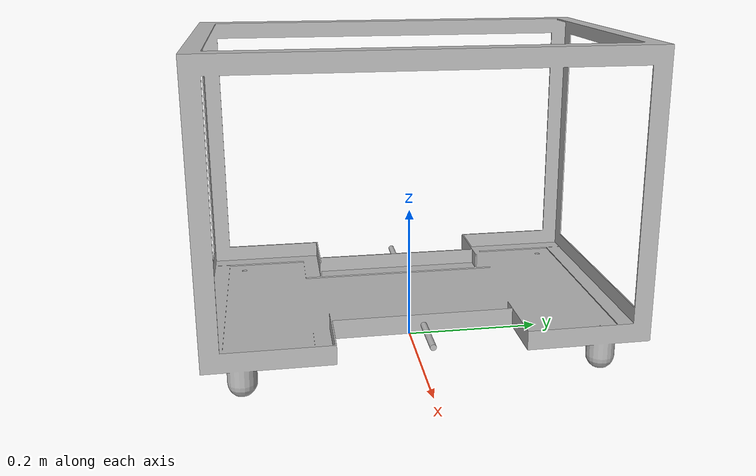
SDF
<?xml version="1.0" ?>
<sdf version="1.6">
	<model name="sentry">
		<link name="base_link">
			<self_collide>false</self_collide>
			<pose frame="">-1.0395409765644898e-114 3.0814879110195774e-35 0.06 1.0691058840368764e-50 -3.94430452610506e-31 -3.3735033418337674e-80</pose>
			<inertial>
				<pose frame="">0.0 0.0 0.0 0 0 0</pose>
				<mass>3.298877191482208</mass>
				<inertia>
					<ixx>0.31028210466725387</ixx>
					<ixy>7.019023753440702e-07</ixy>
					<ixz>3.3712572048818504e-07</ixz>
					<iyy>0.21203836944489496</iyy>
					<iyz>2.033984601675489e-08</iyz>
					<izz>0.2364415924030168</izz>
				</inertia>
			</inertial>
			<collision name="base_link_collision">
				<geometry>
					<mesh>
						<uri>model://model/sentry_v1/meshes/CAD/base_link.stl</uri>
						<scale>0.001 0.001 0.001</scale>
					</mesh>
				</geometry>
			</collision>
			<visual name="base_link_visual">
				<geometry>
					<mesh>
						<uri>model://model/sentry_v1/meshes/CAD/base_link.stl</uri>
						<scale>0.001 0.001 0.001</scale>
					</mesh>
				</geometry>
			</visual>
		</link>
		<plugin filename="libcardsflow_gazebo_plugin.so" name="cardsflow_gazebo_plugin"/>
	</model>
</sdf>
